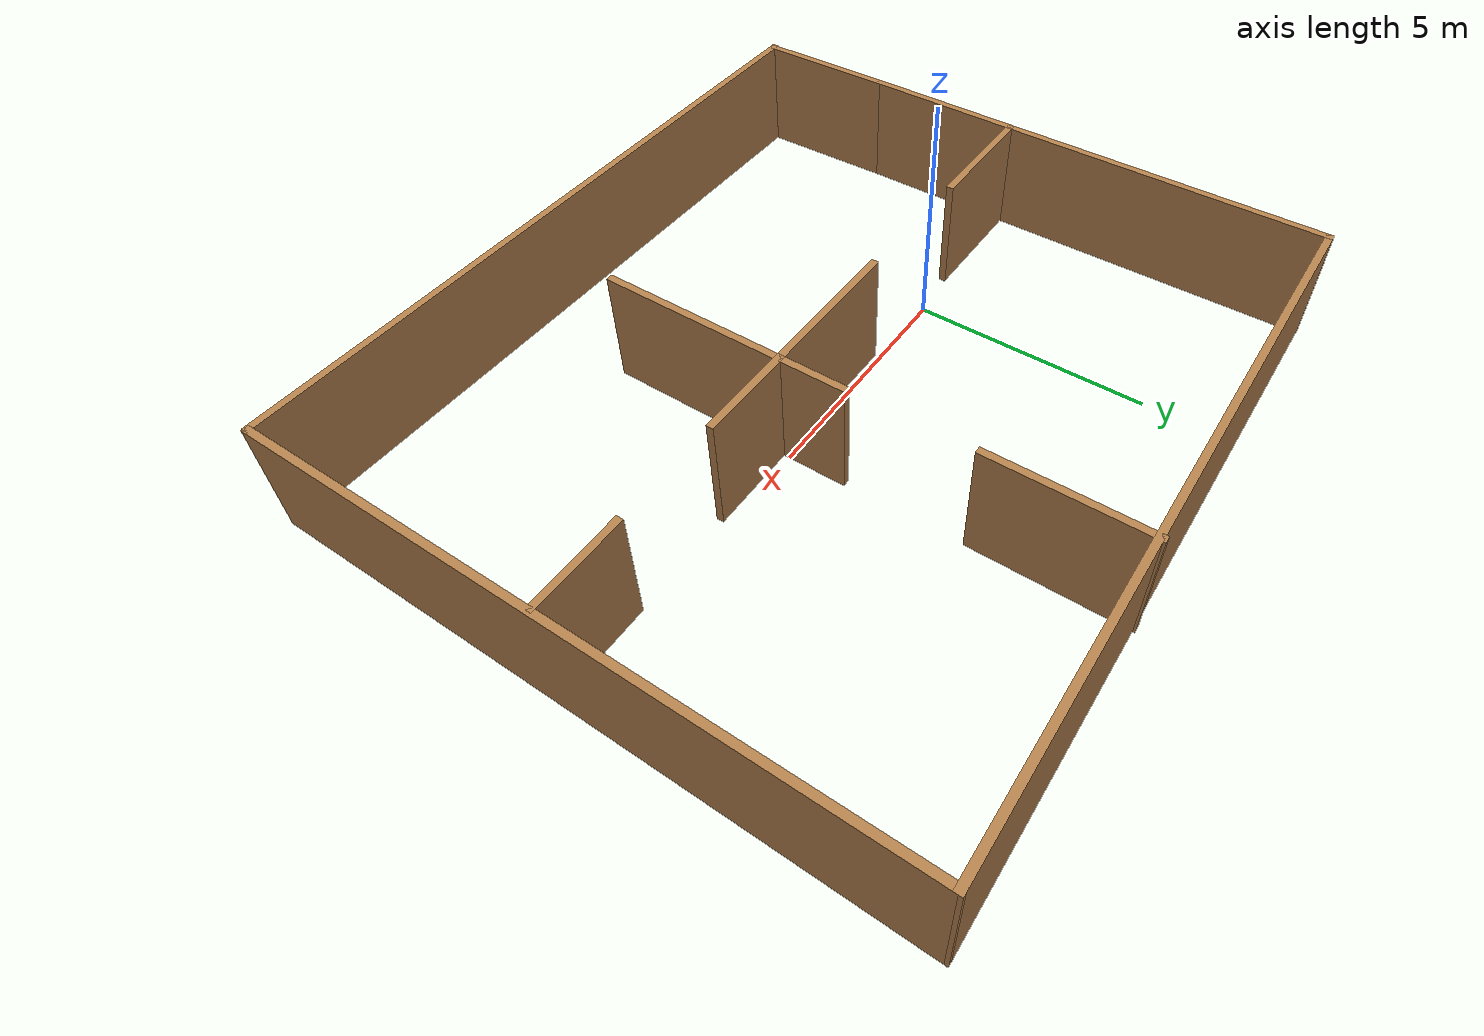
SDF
<?xml version='1.0'?>
<sdf version='1.6'>
  <model name='Apartment_2'>
    <pose frame=''>3.68109 0.178621 0 0 -0 0</pose>
    <link name='Wall_0'>
      <collision name='Wall_0_Collision'>
        <geometry>
          <box>
            <size>10.5 0.15 2.5</size>
          </box>
        </geometry>
        <pose frame=''>0 0 1.25 0 -0 0</pose>
      </collision>
      <visual name='Wall_0_Visual'>
        <pose frame=''>0 0 1.25 0 -0 0</pose>
        <geometry>
          <box>
            <size>10.5 0.15 2.5</size>
          </box>
        </geometry>
        <material>
          <script>
            <uri>file://media/materials/scripts/gazebo.material</uri>
            <name>Gazebo/Wood</name>
          </script>
          <ambient>1 1 1 1</ambient>
        </material>
        <meta>
          <layer>0</layer>
        </meta>
      </visual>
      <pose frame=''>-7.45109 1.48638 0 0 -0 1.5708</pose>
    </link>
    <link name='Wall_1'>
      <collision name='Wall_1_Collision'>
        <geometry>
          <box>
            <size>15 0.15 2.5</size>
          </box>
        </geometry>
        <pose frame=''>0 0 1.25 0 -0 0</pose>
      </collision>
      <visual name='Wall_1_Visual'>
        <pose frame=''>0 0 1.25 0 -0 0</pose>
        <geometry>
          <box>
            <size>15 0.15 2.5</size>
          </box>
        </geometry>
        <material>
          <script>
            <uri>file://media/materials/scripts/gazebo.material</uri>
            <name>Gazebo/Wood</name>
          </script>
          <ambient>1 1 1 1</ambient>
        </material>
        <meta>
          <layer>0</layer>
        </meta>
      </visual>
      <pose frame=''>-0.026088 6.66138 0 0 -0 0</pose>
    </link>
    <link name='Wall_15'>
      <collision name='Wall_15_Collision'>
        <geometry>
          <box>
            <size>2.04569 0.15 2.5</size>
          </box>
        </geometry>
        <pose frame=''>0 0 1.25 0 -0 0</pose>
      </collision>
      <visual name='Wall_15_Visual'>
        <pose frame=''>0 0 1.25 0 -0 0</pose>
        <geometry>
          <box>
            <size>2.04569 0.15 2.5</size>
          </box>
        </geometry>
        <material>
          <script>
            <uri>file://media/materials/scripts/gazebo.material</uri>
            <name>Gazebo/Wood</name>
          </script>
          <ambient>1 1 1 1</ambient>
        </material>
        <meta>
          <layer>0</layer>
        </meta>
      </visual>
      <pose frame=''>2.20186 -0.37782 0 0 -0 3.14138</pose>
    </link>
    <link name='Wall_17'>
      <collision name='Wall_17_Collision'>
        <geometry>
          <box>
            <size>4 0.15 2.5</size>
          </box>
        </geometry>
        <pose frame=''>0 0 1.25 0 -0 0</pose>
      </collision>
      <visual name='Wall_17_Visual'>
        <pose frame=''>0 0 1.25 0 -0 0</pose>
        <geometry>
          <box>
            <size>4 0.15 2.5</size>
          </box>
        </geometry>
        <material>
          <script>
            <uri>file://media/materials/scripts/gazebo.material</uri>
            <name>Gazebo/Wood</name>
          </script>
          <ambient>1 1 1 1</ambient>
        </material>
        <meta>
          <layer>0</layer>
        </meta>
      </visual>
      <pose frame=''>1.25391 -2.30262 0 0 -0 -1.5708</pose>
    </link>
    <link name='Wall_19'>
      <collision name='Wall_19_Collision'>
        <geometry>
          <box>
            <size>3.25 0.15 2.5</size>
          </box>
        </geometry>
        <pose frame=''>0 0 1.25 0 -0 0</pose>
      </collision>
      <visual name='Wall_19_Visual'>
        <pose frame=''>0 0 1.25 0 -0 0</pose>
        <geometry>
          <box>
            <size>3.25 0.15 2.5</size>
          </box>
        </geometry>
        <material>
          <script>
            <uri>file://media/materials/scripts/gazebo.material</uri>
            <name>Gazebo/Wood</name>
          </script>
          <ambient>1 1 1 1</ambient>
        </material>
        <meta>
          <layer>0</layer>
        </meta>
      </visual>
      <pose frame=''>-0.296088 -0.377621 0 0 -0 3.14159</pose>
    </link>
    <link name='Wall_21'>
      <collision name='Wall_21_Collision'>
        <geometry>
          <box>
            <size>2.75 0.15 2.5</size>
          </box>
        </geometry>
        <pose frame=''>0 0 1.25 0 -0 0</pose>
      </collision>
      <visual name='Wall_21_Visual'>
        <pose frame=''>0 0 1.25 0 -0 0</pose>
        <geometry>
          <box>
            <size>2.75 0.15 2.5</size>
          </box>
        </geometry>
        <material>
          <script>
            <uri>file://media/materials/scripts/gazebo.material</uri>
            <name>Gazebo/Wood</name>
          </script>
          <ambient>1 1 1 1</ambient>
        </material>
        <meta>
          <layer>0</layer>
        </meta>
      </visual>
      <pose frame=''>-6.12856 -0.344012 0 0 -0 3.14159</pose>
    </link>
    <link name='Wall_24'>
      <collision name='Wall_24_Collision'>
        <geometry>
          <box>
            <size>1.5 0.15 2.5</size>
          </box>
        </geometry>
        <pose frame=''>0 0 1.25 0 -0 0</pose>
      </collision>
      <visual name='Wall_24_Visual'>
        <pose frame=''>0 0 1.25 0 -0 0</pose>
        <geometry>
          <box>
            <size>1.5 0.15 2.5</size>
          </box>
        </geometry>
        <material>
          <script>
            <uri>file://media/materials/scripts/gazebo.material</uri>
            <name>Gazebo/Wood</name>
          </script>
          <ambient>1 1 1 1</ambient>
        </material>
        <meta>
          <layer>0</layer>
        </meta>
      </visual>
      <pose frame=''>1.25391 0.297379 0 0 -0 1.5708</pose>
    </link>
    <link name='Wall_26'>
      <collision name='Wall_26_Collision'>
        <geometry>
          <box>
            <size>3.25 0.15 2.5</size>
          </box>
        </geometry>
        <pose frame=''>0 0 1.25 0 -0 0</pose>
      </collision>
      <visual name='Wall_26_Visual'>
        <pose frame=''>0 0 1.25 0 -0 0</pose>
        <geometry>
          <box>
            <size>3.25 0.15 2.5</size>
          </box>
        </geometry>
        <material>
          <script>
            <uri>file://media/materials/scripts/gazebo.material</uri>
            <name>Gazebo/Wood</name>
          </script>
          <ambient>1 1 1 1</ambient>
        </material>
        <meta>
          <layer>0</layer>
        </meta>
      </visual>
      <pose frame=''>1.20968 5.15504 0 0 -0 -1.5708</pose>
    </link>
    <link name='Wall_5'>
      <collision name='Wall_5_Collision'>
        <geometry>
          <box>
            <size>13.4899 0.15 2.5</size>
          </box>
        </geometry>
        <pose frame=''>0 0 1.25 0 -0 0</pose>
      </collision>
      <visual name='Wall_5_Visual'>
        <pose frame=''>0 0 1.25 0 -0 0</pose>
        <geometry>
          <box>
            <size>13.4899 0.15 2.5</size>
          </box>
        </geometry>
        <material>
          <script>
            <uri>file://media/materials/scripts/gazebo.material</uri>
            <name>Gazebo/Wood</name>
          </script>
          <ambient>1 1 1 1</ambient>
        </material>
        <meta>
          <layer>0</layer>
        </meta>
      </visual>
      <pose frame=''>7.42551 -0.008532 0 0 -0 -1.56681</pose>
    </link>
    <link name='Wall_6'>
      <collision name='Wall_6_Collision'>
        <geometry>
          <box>
            <size>15 0.15 2.5</size>
          </box>
        </geometry>
        <pose frame=''>0 0 1.25 0 -0 0</pose>
      </collision>
      <visual name='Wall_6_Visual'>
        <pose frame=''>0 0 1.25 0 -0 0</pose>
        <geometry>
          <box>
            <size>15 0.15 2.5</size>
          </box>
        </geometry>
        <material>
          <script>
            <uri>file://media/materials/scripts/gazebo.material</uri>
            <name>Gazebo/Wood</name>
          </script>
          <ambient>1 1 1 1</ambient>
        </material>
        <meta>
          <layer>0</layer>
        </meta>
      </visual>
      <pose frame=''>0.000512 -6.70504 0 0 -0 3.14159</pose>
    </link>
    <link name='Wall_7'>
      <collision name='Wall_7_Collision'>
        <geometry>
          <box>
            <size>3.14029 0.15 2.5</size>
          </box>
        </geometry>
        <pose frame=''>0 0 1.25 0 -0 0</pose>
      </collision>
      <visual name='Wall_7_Visual'>
        <pose frame=''>0 0 1.25 0 -0 0</pose>
        <geometry>
          <box>
            <size>3.14029 0.15 2.5</size>
          </box>
        </geometry>
        <material>
          <script>
            <uri>file://media/materials/scripts/gazebo.material</uri>
            <name>Gazebo/Wood</name>
          </script>
          <ambient>1 1 1 1</ambient>
        </material>
        <meta>
          <layer>0</layer>
        </meta>
      </visual>
      <pose frame=''>-7.42449 -5.18353 0 0 -0 1.58859</pose>
    </link>
    <link name='Wall_9'>
      <collision name='Wall_9_Collision'>
        <geometry>
          <box>
            <size>2 0.15 2.5</size>
          </box>
        </geometry>
        <pose frame=''>0 0 1.25 0 -0 0</pose>
      </collision>
      <visual name='Wall_9_Visual'>
        <pose frame=''>0 0 1.25 0 -0 0</pose>
        <geometry>
          <box>
            <size>2 0.15 2.5</size>
          </box>
        </geometry>
        <material>
          <script>
            <uri>file://media/materials/scripts/gazebo.material</uri>
            <name>Gazebo/Wood</name>
          </script>
          <ambient>1 1 1 1</ambient>
        </material>
        <meta>
          <layer>0</layer>
        </meta>
      </visual>
      <pose frame=''>6.44191 -0.378019 0 0 -0 3.14159</pose>
    </link>
    <static>1</static>
  </model>
</sdf>
